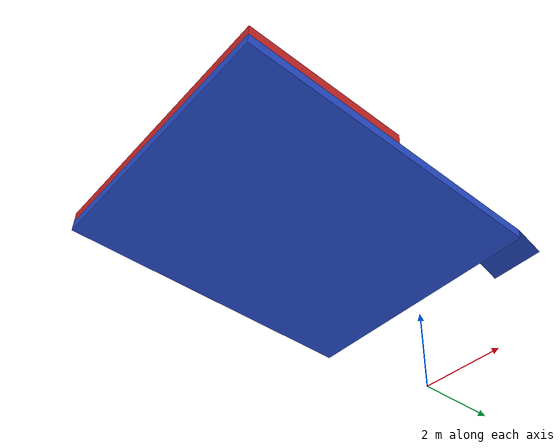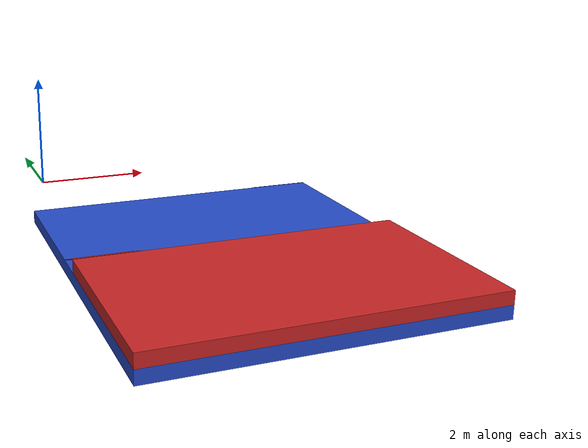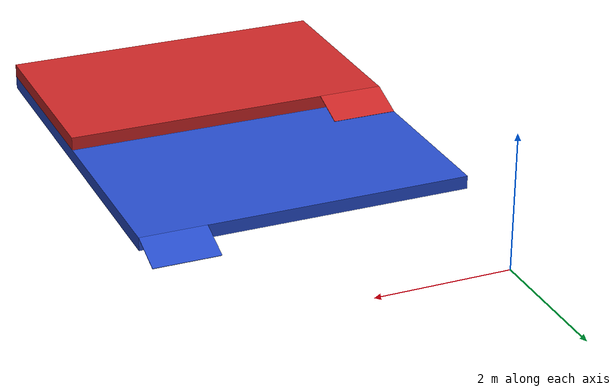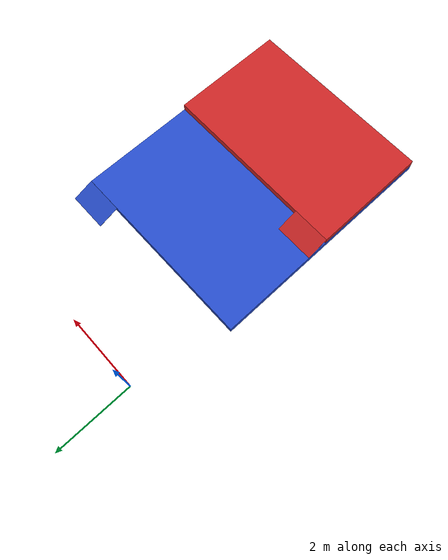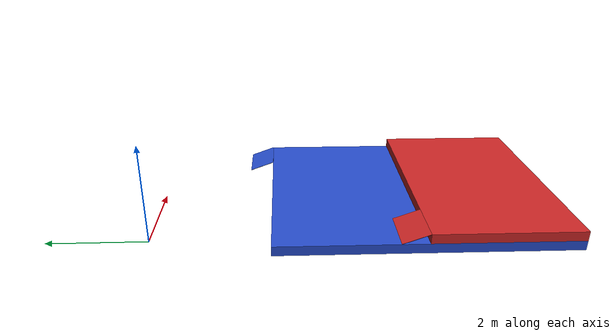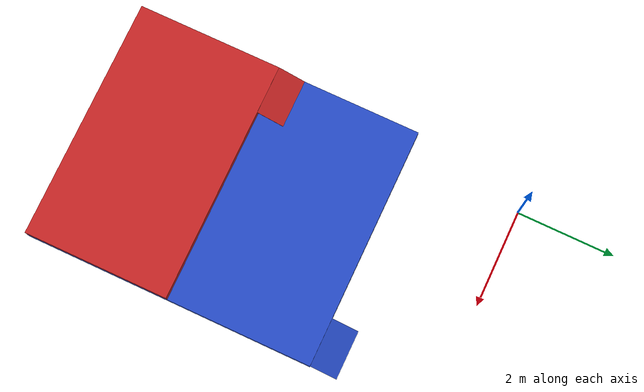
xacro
<?xml version="1.0"?>
<robot name="platform" xmlns:xacro="http://www.ros.org/wiki/xacro">
    <xacro:property name="A"        value="3.0" />
    <xacro:property name="B"        value="5.0" />
    <xacro:property name="C"        value="1.0" />
    <xacro:property name="C_O"      value="0.2" />
    <xacro:property name="alpha"    value="${20*pi/180}" />
    <xacro:property name="x_adj"    value="0.6" />
    <xacro:property name="y_adj"    value="0.6" />
    <link name="base_link">
        <inertial>
            <origin xyz="${B/2 - x_adj} ${y_adj - 2*A} ${C_O/2}" />
            <mass value="10.0" />
            <inertia  ixx="1.0" ixy="0.0"  ixz="0.0"  iyy="100.0"  iyz="0.0"  izz="1.0" />
        </inertial>
        <visual>
            <origin xyz="${B/2 - x_adj} ${y_adj - 2*A} ${C_O/2}" />
            <geometry>
                <box size="${B} ${2*A} ${C_O}" />
            </geometry>
        </visual>
        <collision>
            <origin xyz="${B/2 - x_adj} ${y_adj - 2*A} ${C_O/2}" />
            <geometry>
                <box size="${B} ${2*A} ${C_O}" />
            </geometry>
        </collision>
    </link>
    <link name="next_level_link">
        <inertial>
            <origin xyz="0 0 0" />
            <mass value="5.0" />
            <inertia  ixx="1.0" ixy="0.0"  ixz="0.0"  iyy="100.0"  iyz="0.0"  izz="1.0" />
        </inertial>
        <visual>
            <origin xyz="0 0 0" />
            <geometry>
                <box size="${B} ${A} ${C_O}" />
            </geometry>
        </visual>
        <collision>
            <origin xyz="0 0 0" />
            <geometry>
                <box size="${B} ${A} ${C_O}" />
            </geometry>
        </collision>
    </link>
    <joint name="levels_joint" type="fixed">
        <origin xyz="${B/2 - x_adj} ${y_adj - 5*A/2} ${3*C_O/2}" rpy="0.0 0.0 0.0"/>
        <parent link="base_link"/>
        <child link="next_level_link"/>
        <axis xyz="0.0 0.0 0.0"/>
    </joint>
    <link name="first_ramp_link">
        <inertial>
            <origin xyz="0 0 0" />
            <mass value="5.0" />
            <inertia  ixx="1.0" ixy="0.0"  ixz="0.0"  iyy="100.0"  iyz="0.0"  izz="1.0" />
        </inertial>
        <visual>
            <origin xyz="0 0 0" />
            <geometry>
                <box size="${C} ${C_O/sin(alpha)} 0.01" />
            </geometry>
        </visual>
        <collision>
            <origin xyz="0 0 0" />
            <geometry>
                <box size="${C} ${C_O/sin(alpha)} 0.01" />
            </geometry>
        </collision>
    </link>
    <joint name="first_ramp_joint" type="fixed">
        <origin xyz="${B - x_adj - C/2} ${y_adj - A + 0.5*C_O/tan(alpha)} ${C_O/2}" rpy="${-alpha} 0.0 0.0"/>
        <parent link="base_link"/>
        <child link="first_ramp_link"/>
        <axis xyz="0.0 0.0 0.0"/>
    </joint>
    <link name="second_ramp_link">
        <inertial>
            <origin xyz="0 0 0" />
            <mass value="5.0" />
            <inertia  ixx="1.0" ixy="0.0"  ixz="0.0"  iyy="100.0"  iyz="0.0"  izz="1.0" />
        </inertial>
        <visual>
            <origin xyz="0 0 0" />
            <geometry>
                <box size="${C} ${C_O/sin(alpha)} 0.01" />
            </geometry>
        </visual>
        <collision>
            <origin xyz="0 0 0" />
            <geometry>
                <box size="${C} ${C_O/sin(alpha)} 0.01" />
            </geometry>
        </collision>
    </link>
    <joint name="second_ramp_joint" type="fixed">
        <origin xyz="${C/2 - x_adj} ${y_adj - 2*A + 0.5*C_O/tan(alpha)} ${3*C_O/2}" rpy="${-alpha} 0.0 0.0"/>
        <parent link="base_link"/>
        <child link="second_ramp_link"/>
        <axis xyz="0.0 0.0 0.0"/>
    </joint>

    <gazebo reference="base_link">
        <material>Gazebo/Blue</material>
    </gazebo>
    <gazebo reference="first_ramp_link">
        <material>Gazebo/Blue</material>
    </gazebo>
    <gazebo reference="next_level_link">
        <material>Gazebo/Red</material>
    </gazebo>
    <gazebo reference="second_ramp_link">
        <material>Gazebo/Red</material>
    </gazebo>
</robot>
